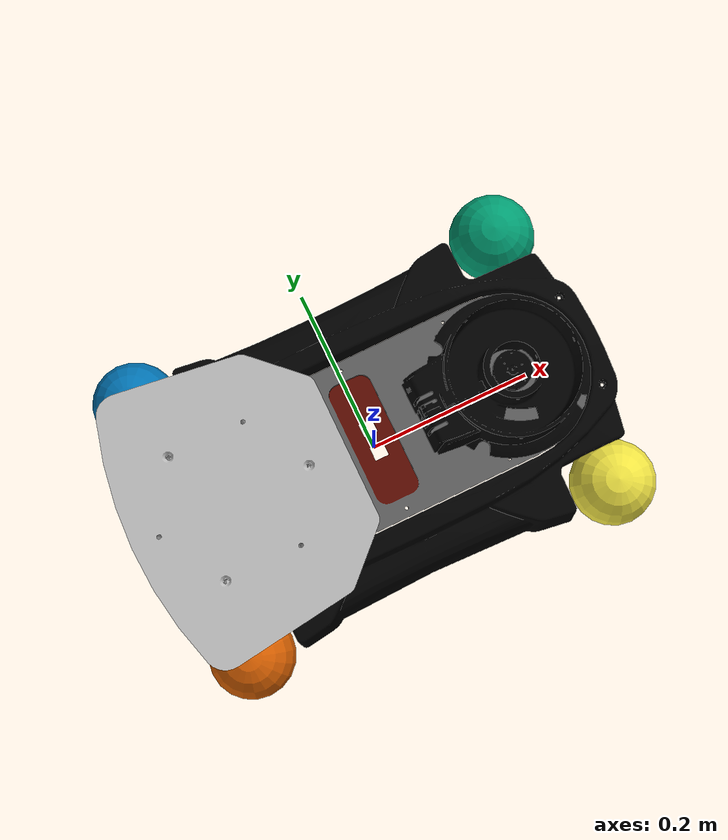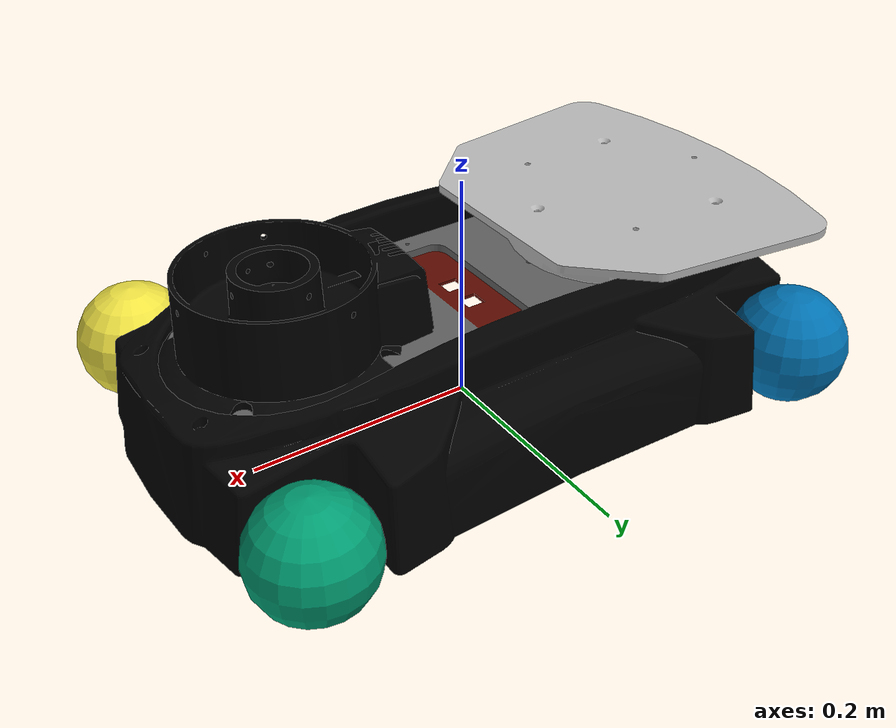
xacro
<?xml version="1.0"?>
<!-- Refactored by Arn-O -->
<robot name="youbot" xmlns:xacro="http://www.ros.org/wiki/xacro">

  <!-- The following included files set up definitions of parts of the robot body -->
  <xacro:include filename="$(find youbot_description)/urdf/common.xacro" />

  <!-- youbot base -->
  <xacro:include filename="$(find youbot_description)/urdf/youbot_base/base.urdf.xacro" />

  <!-- youbot plate -->
  <xacro:include filename="$(find youbot_description)/urdf/youbot_plate/plate.urdf.xacro" />

  <!-- youbot arm -->
  <xacro:include filename="$(find youbot_description)/urdf/youbot_arm/arm.urdf.xacro" />

  <!-- generic simulator_gazebo plugins for starting mechanism control, ros time, ros battery -->
  <xacro:include filename="$(find youbot_description)/gazebo/gazebo.urdf.xacro" />

  <xacro:youbot_base />
  <xacro:youbot_plate />
  <xacro:youbot_arm />

</robot>

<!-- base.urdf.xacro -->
<!-- Refactored by Arn-O -->

<robot name="youbot" xmlns:xacro="http://www.ros.org/wiki/xacro">

  <!-- includes -->
  <xacro:include filename="$(find youbot_description)/urdf/specs.urdf.xacro" />
  <!-- xacro:include filename="$(find youbot_description)/urdf/youbot_base/base.gazebo.xacro" /-->

  <xacro:macro name="youbot_base">

    <!-- ### links ### -->
    <!-- base -->
    <link name="base_footprint">
      <inertial>
        <mass value="0.001" />
        <inertia ixx="0.010" ixy="0.000" ixz="0.000" iyy="0.010" iyz="0.000" izz="0.010" />
      </inertial>

      <visual>
        <geometry>
          <box size="0.001 0.001 0.001" />
        </geometry>
      </visual>
    </link>

   <link name="base_link">
      <inertial>
        <mass value="${base_mass}" />
        <inertia ixx="1.000" ixy="0.000" ixz="0.000" iyy="1.000" iyz="0.000" izz="1.000" />
      </inertial>

      <visual>
        <geometry>
          <mesh filename="package://youbot_description/meshes/youbot_base/base_frame.dae"/>
        </geometry>
      </visual>
    </link>

    <!-- wheels -->
    <!-- front left wheel -->
    <link name="wheel_link_fl">
      <inertial>
        <mass value="${wheel_mass}" />
        <inertia  ixx="0.010" ixy="0.000" ixz="0.000" iyy="0.010" iyz="0.000" izz="0.010" />
      </inertial>

      <visual>
        <geometry>
          <sphere radius="${wheel_radius}" />
        </geometry>
      </visual>

      <collision>
        <geometry>
          <sphere radius="${wheel_radius}" />
        </geometry>
      </collision>
    </link>

    <!-- front right wheel -->
    <link name="wheel_link_fr">
      <inertial>
        <mass value="${wheel_mass}" />
        <inertia  ixx="0.010" ixy="0.000" ixz="0.000" iyy="0.010" iyz="0.000" izz="0.010" />
      </inertial>

      <visual>
        <geometry>
          <sphere radius="${wheel_radius}" />
        </geometry>
      </visual>

      <collision>
        <geometry>
          <sphere radius="${wheel_radius}" />
        </geometry>
      </collision>
    </link>

    <!-- back left wheel -->
    <link name="wheel_link_bl">
      <inertial>
        <mass value="${wheel_mass}" />
        <inertia  ixx="0.010" ixy="0.000" ixz="0.000" iyy="0.010" iyz="0.000" izz="0.010" />
      </inertial>

      <visual>
        <geometry>
          <sphere radius="${wheel_radius}" />
        </geometry>
      </visual>

      <collision>
        <geometry>
          <sphere radius="${wheel_radius}" />
        </geometry>
      </collision>
    </link>

    <!-- back right wheel -->
    <link name="wheel_link_br">
      <inertial>
        <mass value="${wheel_mass}" />
        <inertia  ixx="0.010" ixy="0.000" ixz="0.000" iyy="0.010" iyz="0.000" izz="0.010" />
      </inertial>

      <visual>
        <geometry>
          <sphere radius="${wheel_radius}" />
        </geometry>
      </visual>

      <collision>
        <geometry>
          <sphere radius="${wheel_radius}" />
        </geometry>
      </collision>
    </link>

    <!-- ### joints ### -->
    <joint name="base_joint" type="fixed">
      <origin xyz="${base_pose_x} ${base_pose_y} ${base_pose_z}" rpy="0 0 0" />
      <parent link="base_footprint"/>
      <child link="base_link" />
    </joint>

    <joint name="wheel_fl_joint" type="fixed">
      <origin xyz="${wheel_fl_pose_x} ${wheel_fl_pose_y} ${wheel_fl_pose_z}" rpy="0 0 0" />
      <parent link="base_link"/>
      <child link="wheel_link_fl" />
    </joint>

    <joint name="wheel_fr_joint" type="fixed">
      <origin xyz="${wheel_fr_pose_x} ${wheel_fr_pose_y} ${wheel_fr_pose_z}" rpy="0 0 0" />
      <parent link="base_link"/>
      <child link="wheel_link_fr" />
    </joint>

    <joint name="wheel_bl_joint" type="fixed">
      <origin xyz="${wheel_bl_pose_x} ${wheel_bl_pose_y} ${wheel_bl_pose_z}" rpy="0 0 0" />
      <parent link="base_link"/>
      <child link="wheel_link_bl" />
    </joint>

    <joint name="wheel_br_joint" type="fixed">
      <origin xyz="${wheel_br_pose_x} ${wheel_br_pose_y} ${wheel_br_pose_z}" rpy="0 0 0" />
      <parent link="base_link"/>
      <child link="wheel_link_br" />
    </joint>

    <!-- extensions -->
    <xacro:youbot_base_gazebo />

  </xacro:macro>

</robot>

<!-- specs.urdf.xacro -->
<!-- Refactored by Arn-O -->

<robot name="youbot" xmlns:xacro="http://www.ros.org/wiki/xacro">

  <!-- base -->
  <property name="base_mass" value="19.803" />
  <property name="base_pose_x" value="0.000" />
  <property name="base_pose_y" value="0.000" />
  <property name="base_pose_z" value="0.084" />

  <!-- wheels -->
  <property name="wheel_mass" value="1.400" />
  <property name="wheel_radius" value="0.050" />

  <property name="wheel_fl_pose_x" value="0.228" />
  <property name="wheel_fl_pose_y" value="0.158" />
  <property name="wheel_fl_pose_z" value="-0.034" />

  <property name="wheel_fr_pose_x" value="0.228" />
  <property name="wheel_fr_pose_y" value="-0.158" />
  <property name="wheel_fr_pose_z" value="-0.034" />

  <property name="wheel_bl_pose_x" value="-0.228" />
  <property name="wheel_bl_pose_y" value="0.158" />
  <property name="wheel_bl_pose_z" value="-0.034" />

  <property name="wheel_br_pose_x" value="-0.228" />
  <property name="wheel_br_pose_y" value="-0.158" />
  <property name="wheel_br_pose_z" value="-0.034" />

  <!-- wheels -->
  <property name="plate_mass" value="2.397" />

  <property name="plate_pose_x" value="-0.159" />
  <property name="plate_pose_y" value="0.000" />
  <property name="plate_pose_z" value="0.046" />

  <!-- arm -->
  <property name="arm_base_mass" value="0.961" />

  <property name="arm_base_pose_x" value="0.143" />
  <property name="arm_base_pose_y" value="0.000" />
  <property name="arm_base_pose_z" value="0.046" />

</robot>

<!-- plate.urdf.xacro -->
<!-- Refactored by Arn-O -->
<robot name="youbot" xmlns:xacro="http://www.ros.org/wiki/xacro">
  <xacro:macro name="youbot_plate">

  <!-- ### links ### -->
  <link name="plate_link">
    <inertial>
     <mass value="${plate_mass}"/>
     <inertia ixx="0.01" ixy="0" ixz="0" iyy="0.01" iyz="0" izz="0.01" />
    </inertial>

    <visual>
      <geometry>
        <mesh filename="package://youbot_description/meshes/youbot_plate/plate.dae" />
      </geometry>
    </visual>
  </link>

  <!-- ### joints ### -->
  <joint name="$plate_joint" type="fixed" >
    <origin xyz="${plate_pose_x} ${plate_pose_y} ${plate_pose_z}" rpy="0 0 0" />
    <parent link="base_link" />
    <child link="plate_link" />
   </joint>

  </xacro:macro>

</robot>

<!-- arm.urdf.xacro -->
<robot name="youbot" xmlns:xacro="http://www.ros.org/wiki/xacro">

  <!-- xacro:include filename="$(find youbot_description)/urdf/youbot_arm/arm.transmission.xacro" /-->
  <!-- uncomment for adding the controllers -->
  <xacro:include filename="$(find youbot_description)/urdf/specs.urdf.xacro" />

  <xacro:macro name="youbot_arm">
    <!-- ### links ### -->
    <link name="arm_base_link">
      <inertial>
        <mass value="${arm_base_mass}" />
        <inertia ixx="0.010" ixy="0.000" ixz="0.000" iyy="0.010" iyz="0.000" izz="0.010" />
      </inertial>

      <visual>
        <geometry>
          <mesh filename="package://youbot_description/meshes/youbot_arm/arm_base_frame.dae"/>
        </geometry>
      </visual>
    </link>

    <!-- ### joints ### -->
    <joint name="arm_base_joint" type="fixed">
      <origin xyz="${arm_base_pose_x} ${arm_base_pose_y} ${arm_base_pose_z}" rpy="0 0 0" />
      <parent link="base_link"/>
      <child link="arm_base_link" />
    </joint>

    <!-- extensions -->
    <!-- uncomment for adding the controllers -->
    <!-- xacro:youbot_arm_transmission /-->

  </xacro:macro>

</robot>
